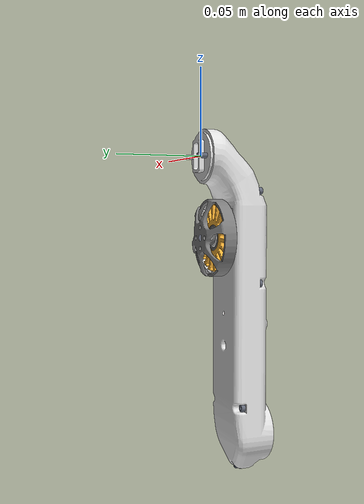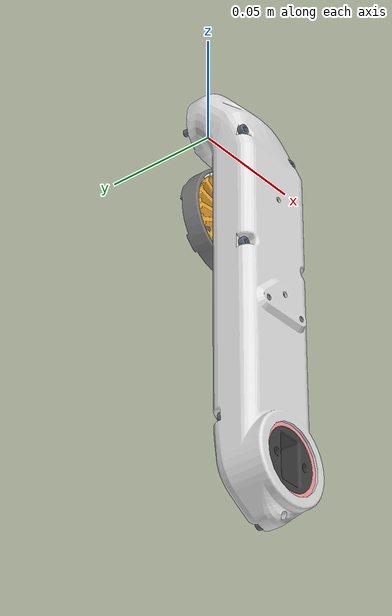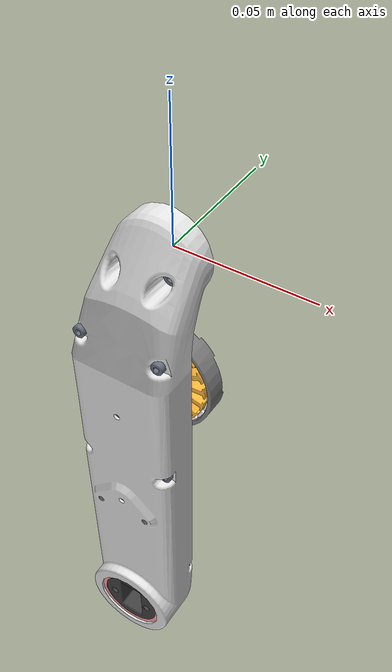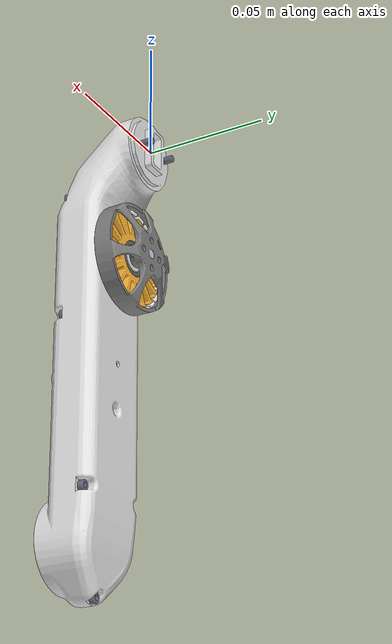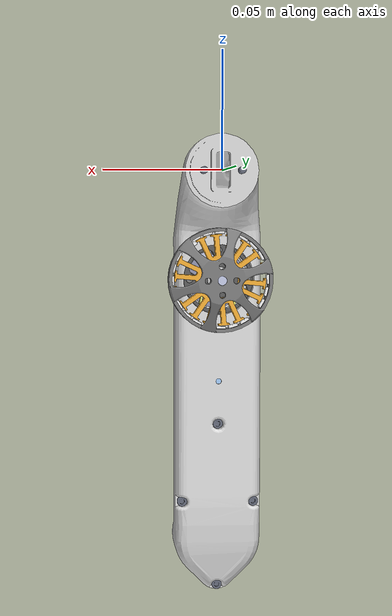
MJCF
<mujoco model="solo_upper_leg_right_side">
  <default>
    <default class="visual">
      <geom group="2" type="mesh" contype="0" conaffinity="0"/>
    </default>
    <default class="collision">
      <geom group="3" type="mesh"/>
    </default>
  </default>
  <asset>
    <material name="material_0" specular="1.0" shininess="0.0" rgba="0.403922 0.427451 0.486275 1.0"/>
    <material name="material_1" specular="1.0" shininess="0.0" rgba="0.894118 0.894118 0.894118 1.0"/>
    <material name="material_2" specular="1.0" shininess="0.0" rgba="0.247059 0.247059 0.247059 1.0"/>
    <material name="material_3" specular="1.0" shininess="0.0" rgba="1.000000 0.619608 0.639216 1.0"/>
    <material name="material_4" specular="1.0" shininess="0.0" rgba="0.654902 0.819608 1.000000 1.0"/>
    <material name="material_5" specular="1.0" shininess="0.0" rgba="1.000000 0.501961 0.501961 1.0"/>
    <material name="material_6" specular="1.0" shininess="0.0" rgba="0.749020 1.000000 1.000000 1.0"/>
    <material name="material_7" specular="1.0" shininess="0.0" rgba="0.501961 0.501961 0.501961 1.0"/>
    <material name="material_8" specular="1.0" shininess="0.0" rgba="0.592157 0.603922 0.709804 1.0"/>
    <material name="material_9" specular="1.0" shininess="0.0" rgba="0.749020 1.000000 0.749020 1.0"/>
    <material name="material_10" specular="1.0" shininess="0.0" rgba="0.792157 0.819608 0.929412 1.0"/>
    <material name="material_11" specular="1.0" shininess="0.0" rgba="0.858824 0.858824 0.858824 1.0"/>
    <material name="material_12" specular="1.0" shininess="0.0" rgba="0.376471 0.376471 0.376471 1.0"/>
    <material name="material_13" specular="1.0" shininess="0.0" rgba="1.000000 0.713726 0.219608 1.0"/>
    <material name="material_14" specular="1.0" shininess="0.0" rgba="0.949020 0.949020 0.949020 1.0"/>
    <material name="material_15" specular="1.0" shininess="0.0" rgba="1.000000 1.000000 1.000000 1.0"/>
    <material name="material_16" specular="1.0" shininess="0.0" rgba="1.000000 1.000000 0.000000 1.0"/>
    <material name="material_17" specular="1.0" shininess="0.0" rgba="0.956863 1.000000 0.403922 1.0"/>
    <material name="material_18" specular="1.0" shininess="0.0" rgba="0.992157 1.000000 0.494118 1.0"/>
    <material name="material_19" specular="1.0" shininess="0.0" rgba="1.000000 1.000000 0.501961 1.0"/>
    <mesh file="solo_upper_leg_right_side_0.obj"/>
    <mesh file="solo_upper_leg_right_side_1.obj"/>
    <mesh file="solo_upper_leg_right_side_2.obj"/>
    <mesh file="solo_upper_leg_right_side_3.obj"/>
    <mesh file="solo_upper_leg_right_side_4.obj"/>
    <mesh file="solo_upper_leg_right_side_5.obj"/>
    <mesh file="solo_upper_leg_right_side_6.obj"/>
    <mesh file="solo_upper_leg_right_side_7.obj"/>
    <mesh file="solo_upper_leg_right_side_8.obj"/>
    <mesh file="solo_upper_leg_right_side_9.obj"/>
    <mesh file="solo_upper_leg_right_side_10.obj"/>
    <mesh file="solo_upper_leg_right_side_11.obj"/>
    <mesh file="solo_upper_leg_right_side_12.obj"/>
    <mesh file="solo_upper_leg_right_side_13.obj"/>
    <mesh file="solo_upper_leg_right_side_14.obj"/>
    <mesh file="solo_upper_leg_right_side_15.obj"/>
    <mesh file="solo_upper_leg_right_side_16.obj"/>
    <mesh file="solo_upper_leg_right_side_17.obj"/>
    <mesh file="solo_upper_leg_right_side_18.obj"/>
    <mesh file="solo_upper_leg_right_side_19.obj"/>
    <mesh file="solo_upper_leg_right_side_collision_0.obj"/>
    <mesh file="solo_upper_leg_right_side_collision_1.obj"/>
    <mesh file="solo_upper_leg_right_side_collision_2.obj"/>
    <mesh file="solo_upper_leg_right_side_collision_3.obj"/>
    <mesh file="solo_upper_leg_right_side_collision_4.obj"/>
    <mesh file="solo_upper_leg_right_side_collision_5.obj"/>
    <mesh file="solo_upper_leg_right_side_collision_6.obj"/>
    <mesh file="solo_upper_leg_right_side_collision_7.obj"/>
  </asset>
  <worldbody>
    <body name="solo_upper_leg_right_side">
      <geom mesh="solo_upper_leg_right_side_0" material="material_19" class="visual"/>
      <geom mesh="solo_upper_leg_right_side_1" material="material_18" class="visual"/>
      <geom mesh="solo_upper_leg_right_side_2" material="material_17" class="visual"/>
      <geom mesh="solo_upper_leg_right_side_3" material="material_16" class="visual"/>
      <geom mesh="solo_upper_leg_right_side_4" material="material_15" class="visual"/>
      <geom mesh="solo_upper_leg_right_side_5" material="material_14" class="visual"/>
      <geom mesh="solo_upper_leg_right_side_6" material="material_13" class="visual"/>
      <geom mesh="solo_upper_leg_right_side_7" material="material_12" class="visual"/>
      <geom mesh="solo_upper_leg_right_side_8" material="material_11" class="visual"/>
      <geom mesh="solo_upper_leg_right_side_9" material="material_10" class="visual"/>
      <geom mesh="solo_upper_leg_right_side_10" material="material_9" class="visual"/>
      <geom mesh="solo_upper_leg_right_side_11" material="material_8" class="visual"/>
      <geom mesh="solo_upper_leg_right_side_12" material="material_7" class="visual"/>
      <geom mesh="solo_upper_leg_right_side_13" material="material_6" class="visual"/>
      <geom mesh="solo_upper_leg_right_side_14" material="material_5" class="visual"/>
      <geom mesh="solo_upper_leg_right_side_15" material="material_4" class="visual"/>
      <geom mesh="solo_upper_leg_right_side_16" material="material_3" class="visual"/>
      <geom mesh="solo_upper_leg_right_side_17" material="material_2" class="visual"/>
      <geom mesh="solo_upper_leg_right_side_18" material="material_1" class="visual"/>
      <geom mesh="solo_upper_leg_right_side_19" material="material_0" class="visual"/>
      <geom mesh="solo_upper_leg_right_side_collision_0" class="collision"/>
      <geom mesh="solo_upper_leg_right_side_collision_1" class="collision"/>
      <geom mesh="solo_upper_leg_right_side_collision_2" class="collision"/>
      <geom mesh="solo_upper_leg_right_side_collision_3" class="collision"/>
      <geom mesh="solo_upper_leg_right_side_collision_4" class="collision"/>
      <geom mesh="solo_upper_leg_right_side_collision_5" class="collision"/>
      <geom mesh="solo_upper_leg_right_side_collision_6" class="collision"/>
      <geom mesh="solo_upper_leg_right_side_collision_7" class="collision"/>
    </body>
  </worldbody>
</mujoco>
